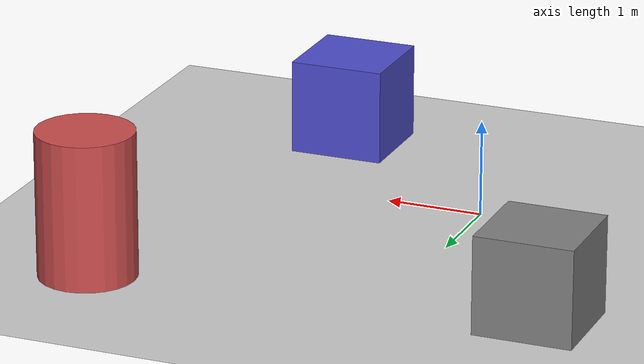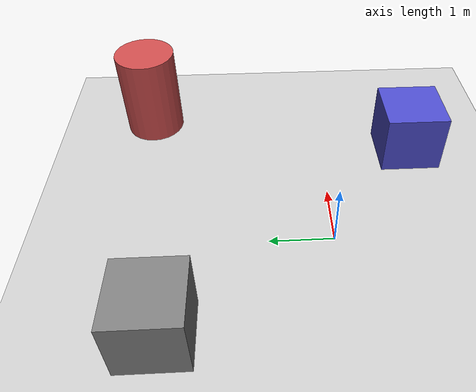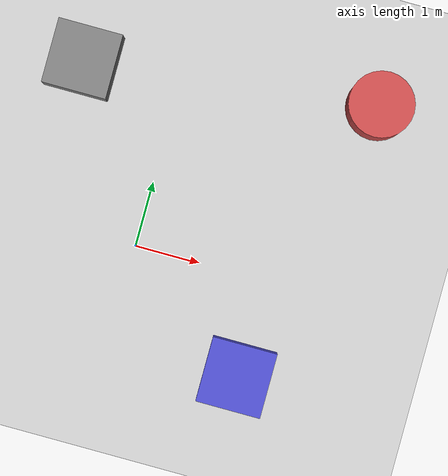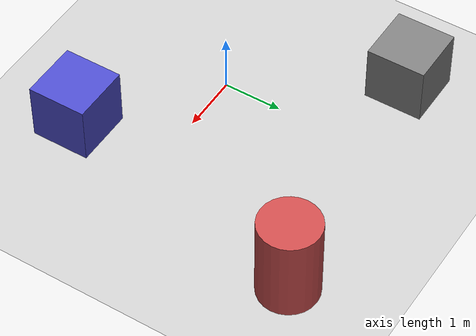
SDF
<?xml version="1.0" ?>
<sdf version="1.8">
  <world name="velodyne_world">

    <!-- Physics -->
    <physics name="1ms" type="ignored">
      <max_step_size>0.001</max_step_size>
      <real_time_factor>1.0</real_time_factor>
    </physics>

    <!-- Plugins -->
    <plugin filename="gz-sim-physics-system" name="gz::sim::systems::Physics"/>
    <plugin filename="gz-sim-user-commands-system" name="gz::sim::systems::UserCommands"/>
    <plugin filename="gz-sim-scene-broadcaster-system" name="gz::sim::systems::SceneBroadcaster"/>
    <plugin filename="gz-sim-sensors-system" name="gz::sim::systems::Sensors">
      <render_engine>ogre2</render_engine>
    </plugin>

    <!-- Scene ambient lighting (no light visuals to avoid segfault) -->
    <scene>
      <ambient>0.8 0.8 0.8 1.0</ambient>
      <background>0.7 0.7 0.7 1</background>
      <shadows>false</shadows>
    </scene>

    <!-- Ground Plane -->
    <model name="ground_plane">
      <static>true</static>
      <link name="link">
        <collision name="collision">
          <geometry>
            <plane>
              <normal>0 0 1</normal>
              <size>100 100</size>
            </plane>
          </geometry>
        </collision>
        <visual name="visual">
          <geometry>
            <plane>
              <normal>0 0 1</normal>
              <size>100 100</size>
            </plane>
          </geometry>
          <material>
            <ambient>0.8 0.8 0.8 1</ambient>
            <diffuse>0.8 0.8 0.8 1</diffuse>
            <specular>0.8 0.8 0.8 1</specular>
          </material>
        </visual>
      </link>
    </model>

    <!-- Test objects for lidar scanning -->
    <model name="box_1">
      <static>true</static>
      <pose>-1.5 2.5 0.5 0 0 0</pose>
      <link name="link">
        <collision name="collision">
          <geometry>
            <box>
              <size>1 1 1</size>
            </box>
          </geometry>
        </collision>
        <visual name="visual">
          <geometry>
            <box>
              <size>1 1 1</size>
            </box>
          </geometry>
          <material>
            <ambient>0.5 0.5 0.5 1</ambient>
            <diffuse>0.5 0.5 0.5 1</diffuse>
            <specular>0.5 0.5 0.5 1</specular>
          </material>
        </visual>
      </link>
    </model>

    <model name="box_2">
      <static>true</static>
      <pose>2 -1.5 0.5 0 0 0</pose>
      <link name="link">
        <collision name="collision">
          <geometry>
            <box>
              <size>1 1 1</size>
            </box>
          </geometry>
        </collision>
        <visual name="visual">
          <geometry>
            <box>
              <size>1 1 1</size>
            </box>
          </geometry>
          <material>
            <ambient>0.3 0.3 0.8 1</ambient>
            <diffuse>0.3 0.3 0.8 1</diffuse>
            <specular>0.3 0.3 0.8 1</specular>
          </material>
        </visual>
      </link>
    </model>

    <model name="cylinder_1">
      <static>true</static>
      <pose>3 3 0.75 0 0 0</pose>
      <link name="link">
        <collision name="collision">
          <geometry>
            <cylinder>
              <radius>0.5</radius>
              <length>1.5</length>
            </cylinder>
          </geometry>
        </collision>
        <visual name="visual">
          <geometry>
            <cylinder>
              <radius>0.5</radius>
              <length>1.5</length>
            </cylinder>
          </geometry>
          <material>
            <ambient>0.8 0.3 0.3 1</ambient>
            <diffuse>0.8 0.3 0.3 1</diffuse>
            <specular>0.8 0.3 0.3 1</specular>
          </material>
        </visual>
      </link>
    </model>

  </world>
</sdf>
